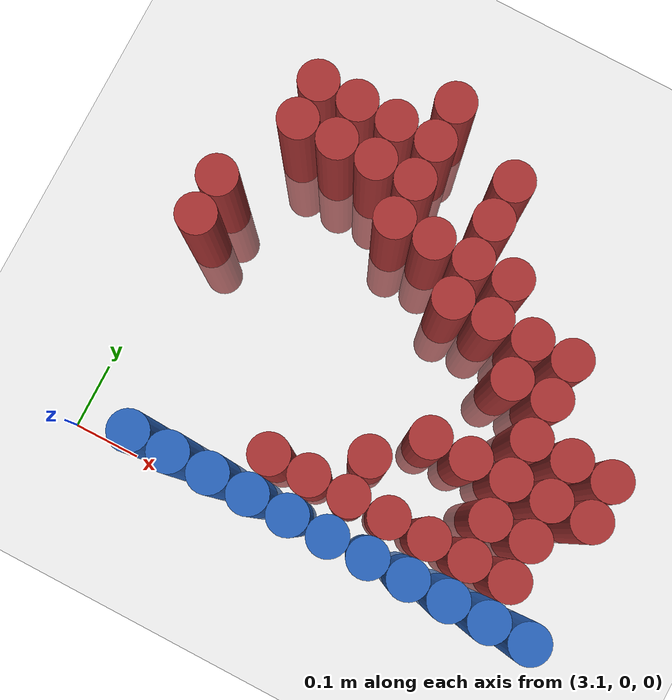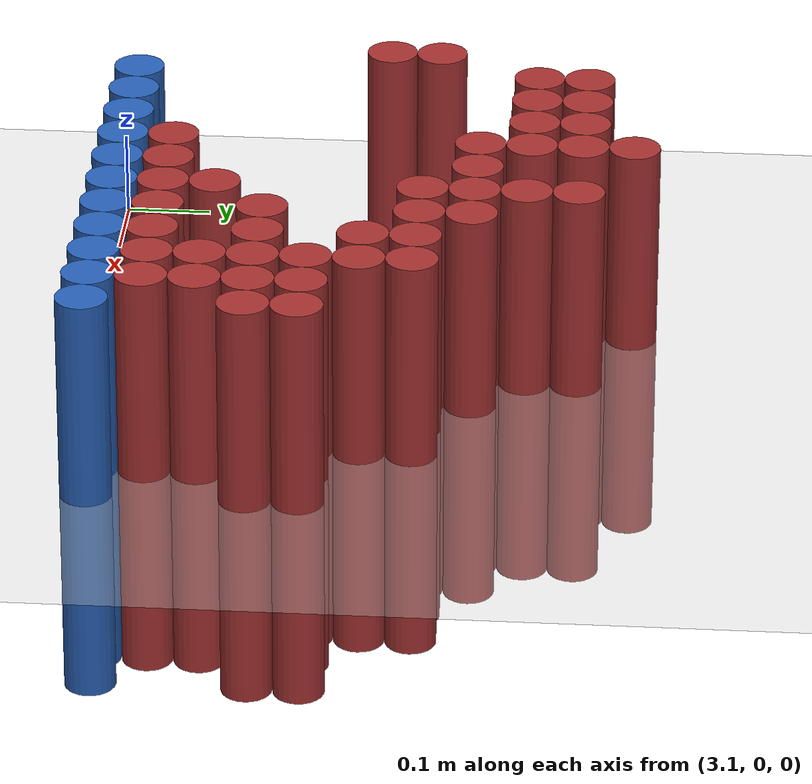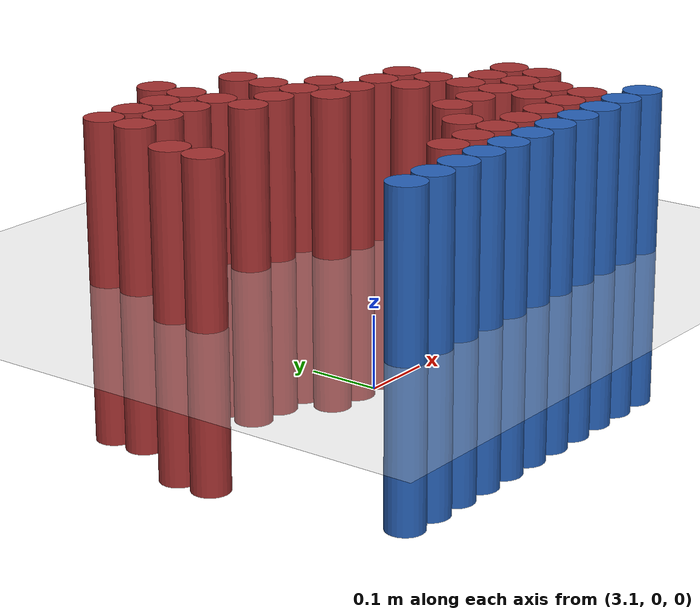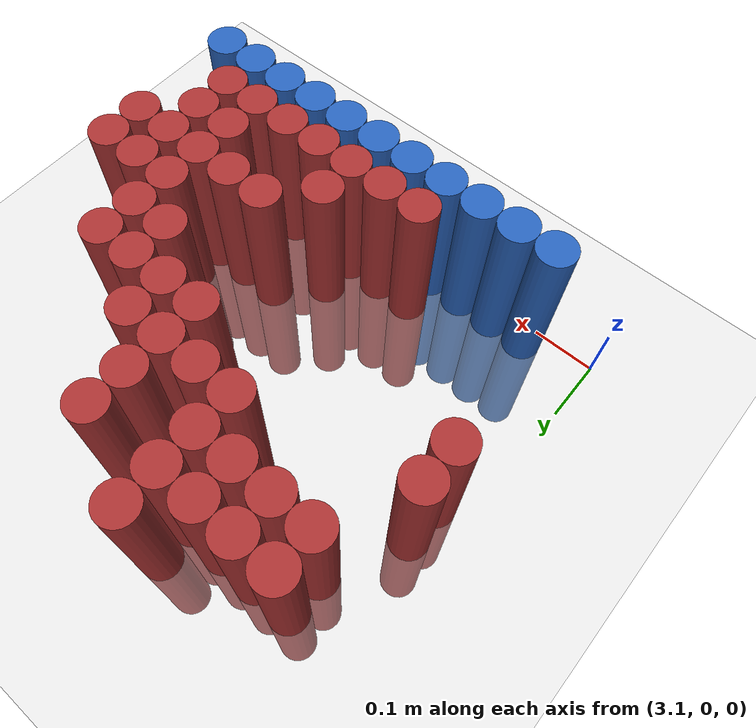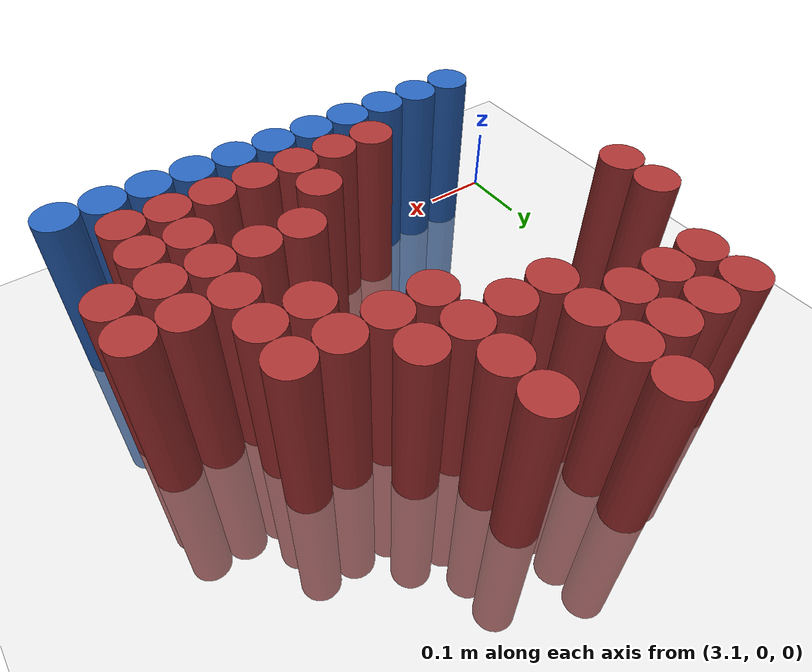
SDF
<sdf version="1.6">
 <world name="default">
  <model name="ground_plane">
   <static>1</static>
   <link name="link">
    <collision name="collision">
     <geometry><plane><normal>0 0 1</normal><size>100 100</size></plane></geometry>
     <surface><friction><ode><mu>100</mu><mu2>50</mu2></ode></friction></surface>
    </collision>
    <visual name="visual">
     <cast_shadows>0</cast_shadows>
     <geometry><plane><normal>0 0 1</normal><size>100 100</size></plane></geometry>
     <material>
      <script><uri>file://media/materials/scripts/gazebo.material</uri><name>Gazebo/Grey</name></script>
     </material>
    </visual>
   </link>
  </model>
  <model name="unit_cylinder_232">
   <static>1</static>
   <pose>3.390000 0.630000 0.000000 0.000000 0.000000 0.000000</pose>
   <link name="link">
    <inertial>
     <mass>1</mass>
     <inertia><ixx>0.145833</ixx><ixy>0</ixy><ixz>0</ixz><iyy>0.145833</iyy><iyz>0</iyz><izz>0.125</izz></inertia>
    </inertial>
    <collision name="collision">
     <geometry><cylinder><radius>0.030000</radius><length>0.5</length></cylinder></geometry>
    </collision>
    <visual name="visual">
     <geometry><cylinder><radius>0.030000</radius><length>0.5</length></cylinder></geometry>
     <material>
      <ambient>0.648000 0.192000 0.192000 1</ambient>
      <diffuse>0.648000 0.192000 0.192000 1</diffuse>
     </material>
     <material>
      <script><name>Gazebo/Grey</name><uri>file://media/materials/scripts/gazebo.material</uri></script>
     </material>
    </visual>
   </link>
  </model>
  <model name="unit_cylinder_244">
   <static>1</static>
   <pose>3.210000 0.570000 0.000000 0.000000 0.000000 0.000000</pose>
   <link name="link">
    <inertial>
     <mass>1</mass>
     <inertia><ixx>0.145833</ixx><ixy>0</ixy><ixz>0</ixz><iyy>0.145833</iyy><iyz>0</iyz><izz>0.125</izz></inertia>
    </inertial>
    <collision name="collision">
     <geometry><cylinder><radius>0.030000</radius><length>0.5</length></cylinder></geometry>
    </collision>
    <visual name="visual">
     <geometry><cylinder><radius>0.030000</radius><length>0.5</length></cylinder></geometry>
     <material>
      <ambient>0.648000 0.192000 0.192000 1</ambient>
      <diffuse>0.648000 0.192000 0.192000 1</diffuse>
     </material>
     <material>
      <script><name>Gazebo/Grey</name><uri>file://media/materials/scripts/gazebo.material</uri></script>
     </material>
    </visual>
   </link>
  </model>
  <model name="unit_cylinder_245">
   <static>1</static>
   <pose>3.270000 0.570000 0.000000 0.000000 0.000000 0.000000</pose>
   <link name="link">
    <inertial>
     <mass>1</mass>
     <inertia><ixx>0.145833</ixx><ixy>0</ixy><ixz>0</ixz><iyy>0.145833</iyy><iyz>0</iyz><izz>0.125</izz></inertia>
    </inertial>
    <collision name="collision">
     <geometry><cylinder><radius>0.030000</radius><length>0.5</length></cylinder></geometry>
    </collision>
    <visual name="visual">
     <geometry><cylinder><radius>0.030000</radius><length>0.5</length></cylinder></geometry>
     <material>
      <ambient>0.648000 0.192000 0.192000 1</ambient>
      <diffuse>0.648000 0.192000 0.192000 1</diffuse>
     </material>
     <material>
      <script><name>Gazebo/Grey</name><uri>file://media/materials/scripts/gazebo.material</uri></script>
     </material>
    </visual>
   </link>
  </model>
  <model name="unit_cylinder_246">
   <static>1</static>
   <pose>3.330000 0.570000 0.000000 0.000000 0.000000 0.000000</pose>
   <link name="link">
    <inertial>
     <mass>1</mass>
     <inertia><ixx>0.145833</ixx><ixy>0</ixy><ixz>0</ixz><iyy>0.145833</iyy><iyz>0</iyz><izz>0.125</izz></inertia>
    </inertial>
    <collision name="collision">
     <geometry><cylinder><radius>0.030000</radius><length>0.5</length></cylinder></geometry>
    </collision>
    <visual name="visual">
     <geometry><cylinder><radius>0.030000</radius><length>0.5</length></cylinder></geometry>
     <material>
      <ambient>0.648000 0.192000 0.192000 1</ambient>
      <diffuse>0.648000 0.192000 0.192000 1</diffuse>
     </material>
     <material>
      <script><name>Gazebo/Grey</name><uri>file://media/materials/scripts/gazebo.material</uri></script>
     </material>
    </visual>
   </link>
  </model>
  <model name="unit_cylinder_247">
   <static>1</static>
   <pose>3.390000 0.570000 0.000000 0.000000 0.000000 0.000000</pose>
   <link name="link">
    <inertial>
     <mass>1</mass>
     <inertia><ixx>0.145833</ixx><ixy>0</ixy><ixz>0</ixz><iyy>0.145833</iyy><iyz>0</iyz><izz>0.125</izz></inertia>
    </inertial>
    <collision name="collision">
     <geometry><cylinder><radius>0.030000</radius><length>0.5</length></cylinder></geometry>
    </collision>
    <visual name="visual">
     <geometry><cylinder><radius>0.030000</radius><length>0.5</length></cylinder></geometry>
     <material>
      <ambient>0.648000 0.192000 0.192000 1</ambient>
      <diffuse>0.648000 0.192000 0.192000 1</diffuse>
     </material>
     <material>
      <script><name>Gazebo/Grey</name><uri>file://media/materials/scripts/gazebo.material</uri></script>
     </material>
    </visual>
   </link>
  </model>
  <model name="unit_cylinder_248">
   <static>1</static>
   <pose>3.510000 0.570000 0.000000 0.000000 0.000000 0.000000</pose>
   <link name="link">
    <inertial>
     <mass>1</mass>
     <inertia><ixx>0.145833</ixx><ixy>0</ixy><ixz>0</ixz><iyy>0.145833</iyy><iyz>0</iyz><izz>0.125</izz></inertia>
    </inertial>
    <collision name="collision">
     <geometry><cylinder><radius>0.030000</radius><length>0.5</length></cylinder></geometry>
    </collision>
    <visual name="visual">
     <geometry><cylinder><radius>0.030000</radius><length>0.5</length></cylinder></geometry>
     <material>
      <ambient>0.648000 0.192000 0.192000 1</ambient>
      <diffuse>0.648000 0.192000 0.192000 1</diffuse>
     </material>
     <material>
      <script><name>Gazebo/Grey</name><uri>file://media/materials/scripts/gazebo.material</uri></script>
     </material>
    </visual>
   </link>
  </model>
  <model name="unit_cylinder_256">
   <static>1</static>
   <pose>3.210000 0.510000 0.000000 0.000000 0.000000 0.000000</pose>
   <link name="link">
    <inertial>
     <mass>1</mass>
     <inertia><ixx>0.145833</ixx><ixy>0</ixy><ixz>0</ixz><iyy>0.145833</iyy><iyz>0</iyz><izz>0.125</izz></inertia>
    </inertial>
    <collision name="collision">
     <geometry><cylinder><radius>0.030000</radius><length>0.5</length></cylinder></geometry>
    </collision>
    <visual name="visual">
     <geometry><cylinder><radius>0.030000</radius><length>0.5</length></cylinder></geometry>
     <material>
      <ambient>0.648000 0.192000 0.192000 1</ambient>
      <diffuse>0.648000 0.192000 0.192000 1</diffuse>
     </material>
     <material>
      <script><name>Gazebo/Grey</name><uri>file://media/materials/scripts/gazebo.material</uri></script>
     </material>
    </visual>
   </link>
  </model>
  <model name="unit_cylinder_257">
   <static>1</static>
   <pose>3.270000 0.510000 0.000000 0.000000 0.000000 0.000000</pose>
   <link name="link">
    <inertial>
     <mass>1</mass>
     <inertia><ixx>0.145833</ixx><ixy>0</ixy><ixz>0</ixz><iyy>0.145833</iyy><iyz>0</iyz><izz>0.125</izz></inertia>
    </inertial>
    <collision name="collision">
     <geometry><cylinder><radius>0.030000</radius><length>0.5</length></cylinder></geometry>
    </collision>
    <visual name="visual">
     <geometry><cylinder><radius>0.030000</radius><length>0.5</length></cylinder></geometry>
     <material>
      <ambient>0.648000 0.192000 0.192000 1</ambient>
      <diffuse>0.648000 0.192000 0.192000 1</diffuse>
     </material>
     <material>
      <script><name>Gazebo/Grey</name><uri>file://media/materials/scripts/gazebo.material</uri></script>
     </material>
    </visual>
   </link>
  </model>
  <model name="unit_cylinder_258">
   <static>1</static>
   <pose>3.330000 0.510000 0.000000 0.000000 0.000000 0.000000</pose>
   <link name="link">
    <inertial>
     <mass>1</mass>
     <inertia><ixx>0.145833</ixx><ixy>0</ixy><ixz>0</ixz><iyy>0.145833</iyy><iyz>0</iyz><izz>0.125</izz></inertia>
    </inertial>
    <collision name="collision">
     <geometry><cylinder><radius>0.030000</radius><length>0.5</length></cylinder></geometry>
    </collision>
    <visual name="visual">
     <geometry><cylinder><radius>0.030000</radius><length>0.5</length></cylinder></geometry>
     <material>
      <ambient>0.648000 0.192000 0.192000 1</ambient>
      <diffuse>0.648000 0.192000 0.192000 1</diffuse>
     </material>
     <material>
      <script><name>Gazebo/Grey</name><uri>file://media/materials/scripts/gazebo.material</uri></script>
     </material>
    </visual>
   </link>
  </model>
  <model name="unit_cylinder_259">
   <static>1</static>
   <pose>3.390000 0.510000 0.000000 0.000000 0.000000 0.000000</pose>
   <link name="link">
    <inertial>
     <mass>1</mass>
     <inertia><ixx>0.145833</ixx><ixy>0</ixy><ixz>0</ixz><iyy>0.145833</iyy><iyz>0</iyz><izz>0.125</izz></inertia>
    </inertial>
    <collision name="collision">
     <geometry><cylinder><radius>0.030000</radius><length>0.5</length></cylinder></geometry>
    </collision>
    <visual name="visual">
     <geometry><cylinder><radius>0.030000</radius><length>0.5</length></cylinder></geometry>
     <material>
      <ambient>0.648000 0.192000 0.192000 1</ambient>
      <diffuse>0.648000 0.192000 0.192000 1</diffuse>
     </material>
     <material>
      <script><name>Gazebo/Grey</name><uri>file://media/materials/scripts/gazebo.material</uri></script>
     </material>
    </visual>
   </link>
  </model>
  <model name="unit_cylinder_260">
   <static>1</static>
   <pose>3.510000 0.510000 0.000000 0.000000 0.000000 0.000000</pose>
   <link name="link">
    <inertial>
     <mass>1</mass>
     <inertia><ixx>0.145833</ixx><ixy>0</ixy><ixz>0</ixz><iyy>0.145833</iyy><iyz>0</iyz><izz>0.125</izz></inertia>
    </inertial>
    <collision name="collision">
     <geometry><cylinder><radius>0.030000</radius><length>0.5</length></cylinder></geometry>
    </collision>
    <visual name="visual">
     <geometry><cylinder><radius>0.030000</radius><length>0.5</length></cylinder></geometry>
     <material>
      <ambient>0.648000 0.192000 0.192000 1</ambient>
      <diffuse>0.648000 0.192000 0.192000 1</diffuse>
     </material>
     <material>
      <script><name>Gazebo/Grey</name><uri>file://media/materials/scripts/gazebo.material</uri></script>
     </material>
    </visual>
   </link>
  </model>
  <model name="unit_cylinder_268">
   <static>1</static>
   <pose>3.390000 0.450000 0.000000 0.000000 0.000000 0.000000</pose>
   <link name="link">
    <inertial>
     <mass>1</mass>
     <inertia><ixx>0.145833</ixx><ixy>0</ixy><ixz>0</ixz><iyy>0.145833</iyy><iyz>0</iyz><izz>0.125</izz></inertia>
    </inertial>
    <collision name="collision">
     <geometry><cylinder><radius>0.030000</radius><length>0.5</length></cylinder></geometry>
    </collision>
    <visual name="visual">
     <geometry><cylinder><radius>0.030000</radius><length>0.5</length></cylinder></geometry>
     <material>
      <ambient>0.648000 0.192000 0.192000 1</ambient>
      <diffuse>0.648000 0.192000 0.192000 1</diffuse>
     </material>
     <material>
      <script><name>Gazebo/Grey</name><uri>file://media/materials/scripts/gazebo.material</uri></script>
     </material>
    </visual>
   </link>
  </model>
  <model name="unit_cylinder_269">
   <static>1</static>
   <pose>3.450000 0.450000 0.000000 0.000000 0.000000 0.000000</pose>
   <link name="link">
    <inertial>
     <mass>1</mass>
     <inertia><ixx>0.145833</ixx><ixy>0</ixy><ixz>0</ixz><iyy>0.145833</iyy><iyz>0</iyz><izz>0.125</izz></inertia>
    </inertial>
    <collision name="collision">
     <geometry><cylinder><radius>0.030000</radius><length>0.5</length></cylinder></geometry>
    </collision>
    <visual name="visual">
     <geometry><cylinder><radius>0.030000</radius><length>0.5</length></cylinder></geometry>
     <material>
      <ambient>0.648000 0.192000 0.192000 1</ambient>
      <diffuse>0.648000 0.192000 0.192000 1</diffuse>
     </material>
     <material>
      <script><name>Gazebo/Grey</name><uri>file://media/materials/scripts/gazebo.material</uri></script>
     </material>
    </visual>
   </link>
  </model>
  <model name="unit_cylinder_270">
   <static>1</static>
   <pose>3.510000 0.450000 0.000000 0.000000 0.000000 0.000000</pose>
   <link name="link">
    <inertial>
     <mass>1</mass>
     <inertia><ixx>0.145833</ixx><ixy>0</ixy><ixz>0</ixz><iyy>0.145833</iyy><iyz>0</iyz><izz>0.125</izz></inertia>
    </inertial>
    <collision name="collision">
     <geometry><cylinder><radius>0.030000</radius><length>0.5</length></cylinder></geometry>
    </collision>
    <visual name="visual">
     <geometry><cylinder><radius>0.030000</radius><length>0.5</length></cylinder></geometry>
     <material>
      <ambient>0.648000 0.192000 0.192000 1</ambient>
      <diffuse>0.648000 0.192000 0.192000 1</diffuse>
     </material>
     <material>
      <script><name>Gazebo/Grey</name><uri>file://media/materials/scripts/gazebo.material</uri></script>
     </material>
    </visual>
   </link>
  </model>
  <model name="unit_cylinder_271">
   <static>1</static>
   <pose>3.570000 0.450000 0.000000 0.000000 0.000000 0.000000</pose>
   <link name="link">
    <inertial>
     <mass>1</mass>
     <inertia><ixx>0.145833</ixx><ixy>0</ixy><ixz>0</ixz><iyy>0.145833</iyy><iyz>0</iyz><izz>0.125</izz></inertia>
    </inertial>
    <collision name="collision">
     <geometry><cylinder><radius>0.030000</radius><length>0.5</length></cylinder></geometry>
    </collision>
    <visual name="visual">
     <geometry><cylinder><radius>0.030000</radius><length>0.5</length></cylinder></geometry>
     <material>
      <ambient>0.648000 0.192000 0.192000 1</ambient>
      <diffuse>0.648000 0.192000 0.192000 1</diffuse>
     </material>
     <material>
      <script><name>Gazebo/Grey</name><uri>file://media/materials/scripts/gazebo.material</uri></script>
     </material>
    </visual>
   </link>
  </model>
  <model name="unit_cylinder_278">
   <static>1</static>
   <pose>3.150000 0.390000 0.000000 0.000000 0.000000 0.000000</pose>
   <link name="link">
    <inertial>
     <mass>1</mass>
     <inertia><ixx>0.145833</ixx><ixy>0</ixy><ixz>0</ixz><iyy>0.145833</iyy><iyz>0</iyz><izz>0.125</izz></inertia>
    </inertial>
    <collision name="collision">
     <geometry><cylinder><radius>0.030000</radius><length>0.5</length></cylinder></geometry>
    </collision>
    <visual name="visual">
     <geometry><cylinder><radius>0.030000</radius><length>0.5</length></cylinder></geometry>
     <material>
      <ambient>0.648000 0.192000 0.192000 1</ambient>
      <diffuse>0.648000 0.192000 0.192000 1</diffuse>
     </material>
     <material>
      <script><name>Gazebo/Grey</name><uri>file://media/materials/scripts/gazebo.material</uri></script>
     </material>
    </visual>
   </link>
  </model>
  <model name="unit_cylinder_279">
   <static>1</static>
   <pose>3.510000 0.390000 0.000000 0.000000 0.000000 0.000000</pose>
   <link name="link">
    <inertial>
     <mass>1</mass>
     <inertia><ixx>0.145833</ixx><ixy>0</ixy><ixz>0</ixz><iyy>0.145833</iyy><iyz>0</iyz><izz>0.125</izz></inertia>
    </inertial>
    <collision name="collision">
     <geometry><cylinder><radius>0.030000</radius><length>0.5</length></cylinder></geometry>
    </collision>
    <visual name="visual">
     <geometry><cylinder><radius>0.030000</radius><length>0.5</length></cylinder></geometry>
     <material>
      <ambient>0.648000 0.192000 0.192000 1</ambient>
      <diffuse>0.648000 0.192000 0.192000 1</diffuse>
     </material>
     <material>
      <script><name>Gazebo/Grey</name><uri>file://media/materials/scripts/gazebo.material</uri></script>
     </material>
    </visual>
   </link>
  </model>
  <model name="unit_cylinder_280">
   <static>1</static>
   <pose>3.570000 0.390000 0.000000 0.000000 0.000000 0.000000</pose>
   <link name="link">
    <inertial>
     <mass>1</mass>
     <inertia><ixx>0.145833</ixx><ixy>0</ixy><ixz>0</ixz><iyy>0.145833</iyy><iyz>0</iyz><izz>0.125</izz></inertia>
    </inertial>
    <collision name="collision">
     <geometry><cylinder><radius>0.030000</radius><length>0.5</length></cylinder></geometry>
    </collision>
    <visual name="visual">
     <geometry><cylinder><radius>0.030000</radius><length>0.5</length></cylinder></geometry>
     <material>
      <ambient>0.648000 0.192000 0.192000 1</ambient>
      <diffuse>0.648000 0.192000 0.192000 1</diffuse>
     </material>
     <material>
      <script><name>Gazebo/Grey</name><uri>file://media/materials/scripts/gazebo.material</uri></script>
     </material>
    </visual>
   </link>
  </model>
  <model name="unit_cylinder_281">
   <static>1</static>
   <pose>3.630000 0.390000 0.000000 0.000000 0.000000 0.000000</pose>
   <link name="link">
    <inertial>
     <mass>1</mass>
     <inertia><ixx>0.145833</ixx><ixy>0</ixy><ixz>0</ixz><iyy>0.145833</iyy><iyz>0</iyz><izz>0.125</izz></inertia>
    </inertial>
    <collision name="collision">
     <geometry><cylinder><radius>0.030000</radius><length>0.5</length></cylinder></geometry>
    </collision>
    <visual name="visual">
     <geometry><cylinder><radius>0.030000</radius><length>0.5</length></cylinder></geometry>
     <material>
      <ambient>0.648000 0.192000 0.192000 1</ambient>
      <diffuse>0.648000 0.192000 0.192000 1</diffuse>
     </material>
     <material>
      <script><name>Gazebo/Grey</name><uri>file://media/materials/scripts/gazebo.material</uri></script>
     </material>
    </visual>
   </link>
  </model>
  <model name="unit_cylinder_282">
   <static>1</static>
   <pose>3.690000 0.390000 0.000000 0.000000 0.000000 0.000000</pose>
   <link name="link">
    <inertial>
     <mass>1</mass>
     <inertia><ixx>0.145833</ixx><ixy>0</ixy><ixz>0</ixz><iyy>0.145833</iyy><iyz>0</iyz><izz>0.125</izz></inertia>
    </inertial>
    <collision name="collision">
     <geometry><cylinder><radius>0.030000</radius><length>0.5</length></cylinder></geometry>
    </collision>
    <visual name="visual">
     <geometry><cylinder><radius>0.030000</radius><length>0.5</length></cylinder></geometry>
     <material>
      <ambient>0.648000 0.192000 0.192000 1</ambient>
      <diffuse>0.648000 0.192000 0.192000 1</diffuse>
     </material>
     <material>
      <script><name>Gazebo/Grey</name><uri>file://media/materials/scripts/gazebo.material</uri></script>
     </material>
    </visual>
   </link>
  </model>
  <model name="unit_cylinder_288">
   <static>1</static>
   <pose>3.150000 0.330000 0.000000 0.000000 0.000000 0.000000</pose>
   <link name="link">
    <inertial>
     <mass>1</mass>
     <inertia><ixx>0.145833</ixx><ixy>0</ixy><ixz>0</ixz><iyy>0.145833</iyy><iyz>0</iyz><izz>0.125</izz></inertia>
    </inertial>
    <collision name="collision">
     <geometry><cylinder><radius>0.030000</radius><length>0.5</length></cylinder></geometry>
    </collision>
    <visual name="visual">
     <geometry><cylinder><radius>0.030000</radius><length>0.5</length></cylinder></geometry>
     <material>
      <ambient>0.648000 0.192000 0.192000 1</ambient>
      <diffuse>0.648000 0.192000 0.192000 1</diffuse>
     </material>
     <material>
      <script><name>Gazebo/Grey</name><uri>file://media/materials/scripts/gazebo.material</uri></script>
     </material>
    </visual>
   </link>
  </model>
  <model name="unit_cylinder_289">
   <static>1</static>
   <pose>3.630000 0.330000 0.000000 0.000000 0.000000 0.000000</pose>
   <link name="link">
    <inertial>
     <mass>1</mass>
     <inertia><ixx>0.145833</ixx><ixy>0</ixy><ixz>0</ixz><iyy>0.145833</iyy><iyz>0</iyz><izz>0.125</izz></inertia>
    </inertial>
    <collision name="collision">
     <geometry><cylinder><radius>0.030000</radius><length>0.5</length></cylinder></geometry>
    </collision>
    <visual name="visual">
     <geometry><cylinder><radius>0.030000</radius><length>0.5</length></cylinder></geometry>
     <material>
      <ambient>0.648000 0.192000 0.192000 1</ambient>
      <diffuse>0.648000 0.192000 0.192000 1</diffuse>
     </material>
     <material>
      <script><name>Gazebo/Grey</name><uri>file://media/materials/scripts/gazebo.material</uri></script>
     </material>
    </visual>
   </link>
  </model>
  <model name="unit_cylinder_290">
   <static>1</static>
   <pose>3.690000 0.330000 0.000000 0.000000 0.000000 0.000000</pose>
   <link name="link">
    <inertial>
     <mass>1</mass>
     <inertia><ixx>0.145833</ixx><ixy>0</ixy><ixz>0</ixz><iyy>0.145833</iyy><iyz>0</iyz><izz>0.125</izz></inertia>
    </inertial>
    <collision name="collision">
     <geometry><cylinder><radius>0.030000</radius><length>0.5</length></cylinder></geometry>
    </collision>
    <visual name="visual">
     <geometry><cylinder><radius>0.030000</radius><length>0.5</length></cylinder></geometry>
     <material>
      <ambient>0.648000 0.192000 0.192000 1</ambient>
      <diffuse>0.648000 0.192000 0.192000 1</diffuse>
     </material>
     <material>
      <script><name>Gazebo/Grey</name><uri>file://media/materials/scripts/gazebo.material</uri></script>
     </material>
    </visual>
   </link>
  </model>
  <model name="unit_cylinder_294">
   <static>1</static>
   <pose>3.690000 0.270000 0.000000 0.000000 0.000000 0.000000</pose>
   <link name="link">
    <inertial>
     <mass>1</mass>
     <inertia><ixx>0.145833</ixx><ixy>0</ixy><ixz>0</ixz><iyy>0.145833</iyy><iyz>0</iyz><izz>0.125</izz></inertia>
    </inertial>
    <collision name="collision">
     <geometry><cylinder><radius>0.030000</radius><length>0.5</length></cylinder></geometry>
    </collision>
    <visual name="visual">
     <geometry><cylinder><radius>0.030000</radius><length>0.5</length></cylinder></geometry>
     <material>
      <ambient>0.648000 0.192000 0.192000 1</ambient>
      <diffuse>0.648000 0.192000 0.192000 1</diffuse>
     </material>
     <material>
      <script><name>Gazebo/Grey</name><uri>file://media/materials/scripts/gazebo.material</uri></script>
     </material>
    </visual>
   </link>
  </model>
  <model name="unit_cylinder_295">
   <static>1</static>
   <pose>3.750000 0.270000 0.000000 0.000000 0.000000 0.000000</pose>
   <link name="link">
    <inertial>
     <mass>1</mass>
     <inertia><ixx>0.145833</ixx><ixy>0</ixy><ixz>0</ixz><iyy>0.145833</iyy><iyz>0</iyz><izz>0.125</izz></inertia>
    </inertial>
    <collision name="collision">
     <geometry><cylinder><radius>0.030000</radius><length>0.5</length></cylinder></geometry>
    </collision>
    <visual name="visual">
     <geometry><cylinder><radius>0.030000</radius><length>0.5</length></cylinder></geometry>
     <material>
      <ambient>0.648000 0.192000 0.192000 1</ambient>
      <diffuse>0.648000 0.192000 0.192000 1</diffuse>
     </material>
     <material>
      <script><name>Gazebo/Grey</name><uri>file://media/materials/scripts/gazebo.material</uri></script>
     </material>
    </visual>
   </link>
  </model>
  <model name="unit_cylinder_296">
   <static>1</static>
   <pose>3.810000 0.270000 0.000000 0.000000 0.000000 0.000000</pose>
   <link name="link">
    <inertial>
     <mass>1</mass>
     <inertia><ixx>0.145833</ixx><ixy>0</ixy><ixz>0</ixz><iyy>0.145833</iyy><iyz>0</iyz><izz>0.125</izz></inertia>
    </inertial>
    <collision name="collision">
     <geometry><cylinder><radius>0.030000</radius><length>0.5</length></cylinder></geometry>
    </collision>
    <visual name="visual">
     <geometry><cylinder><radius>0.030000</radius><length>0.5</length></cylinder></geometry>
     <material>
      <ambient>0.648000 0.192000 0.192000 1</ambient>
      <diffuse>0.648000 0.192000 0.192000 1</diffuse>
     </material>
     <material>
      <script><name>Gazebo/Grey</name><uri>file://media/materials/scripts/gazebo.material</uri></script>
     </material>
    </visual>
   </link>
  </model>
  <model name="unit_cylinder_303">
   <static>1</static>
   <pose>3.570000 0.210000 0.000000 0.000000 0.000000 0.000000</pose>
   <link name="link">
    <inertial>
     <mass>1</mass>
     <inertia><ixx>0.145833</ixx><ixy>0</ixy><ixz>0</ixz><iyy>0.145833</iyy><iyz>0</iyz><izz>0.125</izz></inertia>
    </inertial>
    <collision name="collision">
     <geometry><cylinder><radius>0.030000</radius><length>0.5</length></cylinder></geometry>
    </collision>
    <visual name="visual">
     <geometry><cylinder><radius>0.030000</radius><length>0.5</length></cylinder></geometry>
     <material>
      <ambient>0.648000 0.192000 0.192000 1</ambient>
      <diffuse>0.648000 0.192000 0.192000 1</diffuse>
     </material>
     <material>
      <script><name>Gazebo/Grey</name><uri>file://media/materials/scripts/gazebo.material</uri></script>
     </material>
    </visual>
   </link>
  </model>
  <model name="unit_cylinder_304">
   <static>1</static>
   <pose>3.630000 0.210000 0.000000 0.000000 0.000000 0.000000</pose>
   <link name="link">
    <inertial>
     <mass>1</mass>
     <inertia><ixx>0.145833</ixx><ixy>0</ixy><ixz>0</ixz><iyy>0.145833</iyy><iyz>0</iyz><izz>0.125</izz></inertia>
    </inertial>
    <collision name="collision">
     <geometry><cylinder><radius>0.030000</radius><length>0.5</length></cylinder></geometry>
    </collision>
    <visual name="visual">
     <geometry><cylinder><radius>0.030000</radius><length>0.5</length></cylinder></geometry>
     <material>
      <ambient>0.648000 0.192000 0.192000 1</ambient>
      <diffuse>0.648000 0.192000 0.192000 1</diffuse>
     </material>
     <material>
      <script><name>Gazebo/Grey</name><uri>file://media/materials/scripts/gazebo.material</uri></script>
     </material>
    </visual>
   </link>
  </model>
  <model name="unit_cylinder_305">
   <static>1</static>
   <pose>3.690000 0.210000 0.000000 0.000000 0.000000 0.000000</pose>
   <link name="link">
    <inertial>
     <mass>1</mass>
     <inertia><ixx>0.145833</ixx><ixy>0</ixy><ixz>0</ixz><iyy>0.145833</iyy><iyz>0</iyz><izz>0.125</izz></inertia>
    </inertial>
    <collision name="collision">
     <geometry><cylinder><radius>0.030000</radius><length>0.5</length></cylinder></geometry>
    </collision>
    <visual name="visual">
     <geometry><cylinder><radius>0.030000</radius><length>0.5</length></cylinder></geometry>
     <material>
      <ambient>0.648000 0.192000 0.192000 1</ambient>
      <diffuse>0.648000 0.192000 0.192000 1</diffuse>
     </material>
     <material>
      <script><name>Gazebo/Grey</name><uri>file://media/materials/scripts/gazebo.material</uri></script>
     </material>
    </visual>
   </link>
  </model>
  <model name="unit_cylinder_306">
   <static>1</static>
   <pose>3.750000 0.210000 0.000000 0.000000 0.000000 0.000000</pose>
   <link name="link">
    <inertial>
     <mass>1</mass>
     <inertia><ixx>0.145833</ixx><ixy>0</ixy><ixz>0</ixz><iyy>0.145833</iyy><iyz>0</iyz><izz>0.125</izz></inertia>
    </inertial>
    <collision name="collision">
     <geometry><cylinder><radius>0.030000</radius><length>0.5</length></cylinder></geometry>
    </collision>
    <visual name="visual">
     <geometry><cylinder><radius>0.030000</radius><length>0.5</length></cylinder></geometry>
     <material>
      <ambient>0.648000 0.192000 0.192000 1</ambient>
      <diffuse>0.648000 0.192000 0.192000 1</diffuse>
     </material>
     <material>
      <script><name>Gazebo/Grey</name><uri>file://media/materials/scripts/gazebo.material</uri></script>
     </material>
    </visual>
   </link>
  </model>
  <model name="unit_cylinder_307">
   <static>1</static>
   <pose>3.810000 0.210000 0.000000 0.000000 0.000000 0.000000</pose>
   <link name="link">
    <inertial>
     <mass>1</mass>
     <inertia><ixx>0.145833</ixx><ixy>0</ixy><ixz>0</ixz><iyy>0.145833</iyy><iyz>0</iyz><izz>0.125</izz></inertia>
    </inertial>
    <collision name="collision">
     <geometry><cylinder><radius>0.030000</radius><length>0.5</length></cylinder></geometry>
    </collision>
    <visual name="visual">
     <geometry><cylinder><radius>0.030000</radius><length>0.5</length></cylinder></geometry>
     <material>
      <ambient>0.648000 0.192000 0.192000 1</ambient>
      <diffuse>0.648000 0.192000 0.192000 1</diffuse>
     </material>
     <material>
      <script><name>Gazebo/Grey</name><uri>file://media/materials/scripts/gazebo.material</uri></script>
     </material>
    </visual>
   </link>
  </model>
  <model name="unit_cylinder_315">
   <static>1</static>
   <pose>3.510000 0.150000 0.000000 0.000000 0.000000 0.000000</pose>
   <link name="link">
    <inertial>
     <mass>1</mass>
     <inertia><ixx>0.145833</ixx><ixy>0</ixy><ixz>0</ixz><iyy>0.145833</iyy><iyz>0</iyz><izz>0.125</izz></inertia>
    </inertial>
    <collision name="collision">
     <geometry><cylinder><radius>0.030000</radius><length>0.5</length></cylinder></geometry>
    </collision>
    <visual name="visual">
     <geometry><cylinder><radius>0.030000</radius><length>0.5</length></cylinder></geometry>
     <material>
      <ambient>0.648000 0.192000 0.192000 1</ambient>
      <diffuse>0.648000 0.192000 0.192000 1</diffuse>
     </material>
     <material>
      <script><name>Gazebo/Grey</name><uri>file://media/materials/scripts/gazebo.material</uri></script>
     </material>
    </visual>
   </link>
  </model>
  <model name="unit_cylinder_316">
   <static>1</static>
   <pose>3.690000 0.150000 0.000000 0.000000 0.000000 0.000000</pose>
   <link name="link">
    <inertial>
     <mass>1</mass>
     <inertia><ixx>0.145833</ixx><ixy>0</ixy><ixz>0</ixz><iyy>0.145833</iyy><iyz>0</iyz><izz>0.125</izz></inertia>
    </inertial>
    <collision name="collision">
     <geometry><cylinder><radius>0.030000</radius><length>0.5</length></cylinder></geometry>
    </collision>
    <visual name="visual">
     <geometry><cylinder><radius>0.030000</radius><length>0.5</length></cylinder></geometry>
     <material>
      <ambient>0.648000 0.192000 0.192000 1</ambient>
      <diffuse>0.648000 0.192000 0.192000 1</diffuse>
     </material>
     <material>
      <script><name>Gazebo/Grey</name><uri>file://media/materials/scripts/gazebo.material</uri></script>
     </material>
    </visual>
   </link>
  </model>
  <model name="unit_cylinder_317">
   <static>1</static>
   <pose>3.750000 0.150000 0.000000 0.000000 0.000000 0.000000</pose>
   <link name="link">
    <inertial>
     <mass>1</mass>
     <inertia><ixx>0.145833</ixx><ixy>0</ixy><ixz>0</ixz><iyy>0.145833</iyy><iyz>0</iyz><izz>0.125</izz></inertia>
    </inertial>
    <collision name="collision">
     <geometry><cylinder><radius>0.030000</radius><length>0.5</length></cylinder></geometry>
    </collision>
    <visual name="visual">
     <geometry><cylinder><radius>0.030000</radius><length>0.5</length></cylinder></geometry>
     <material>
      <ambient>0.648000 0.192000 0.192000 1</ambient>
      <diffuse>0.648000 0.192000 0.192000 1</diffuse>
     </material>
     <material>
      <script><name>Gazebo/Grey</name><uri>file://media/materials/scripts/gazebo.material</uri></script>
     </material>
    </visual>
   </link>
  </model>
  <model name="unit_cylinder_326">
   <static>1</static>
   <pose>3.390000 0.090000 0.000000 0.000000 0.000000 0.000000</pose>
   <link name="link">
    <inertial>
     <mass>1</mass>
     <inertia><ixx>0.145833</ixx><ixy>0</ixy><ixz>0</ixz><iyy>0.145833</iyy><iyz>0</iyz><izz>0.125</izz></inertia>
    </inertial>
    <collision name="collision">
     <geometry><cylinder><radius>0.030000</radius><length>0.5</length></cylinder></geometry>
    </collision>
    <visual name="visual">
     <geometry><cylinder><radius>0.030000</radius><length>0.5</length></cylinder></geometry>
     <material>
      <ambient>0.648000 0.192000 0.192000 1</ambient>
      <diffuse>0.648000 0.192000 0.192000 1</diffuse>
     </material>
     <material>
      <script><name>Gazebo/Grey</name><uri>file://media/materials/scripts/gazebo.material</uri></script>
     </material>
    </visual>
   </link>
  </model>
  <model name="unit_cylinder_327">
   <static>1</static>
   <pose>3.450000 0.090000 0.000000 0.000000 0.000000 0.000000</pose>
   <link name="link">
    <inertial>
     <mass>1</mass>
     <inertia><ixx>0.145833</ixx><ixy>0</ixy><ixz>0</ixz><iyy>0.145833</iyy><iyz>0</iyz><izz>0.125</izz></inertia>
    </inertial>
    <collision name="collision">
     <geometry><cylinder><radius>0.030000</radius><length>0.5</length></cylinder></geometry>
    </collision>
    <visual name="visual">
     <geometry><cylinder><radius>0.030000</radius><length>0.5</length></cylinder></geometry>
     <material>
      <ambient>0.648000 0.192000 0.192000 1</ambient>
      <diffuse>0.648000 0.192000 0.192000 1</diffuse>
     </material>
     <material>
      <script><name>Gazebo/Grey</name><uri>file://media/materials/scripts/gazebo.material</uri></script>
     </material>
    </visual>
   </link>
  </model>
  <model name="unit_cylinder_328">
   <static>1</static>
   <pose>3.510000 0.090000 0.000000 0.000000 0.000000 0.000000</pose>
   <link name="link">
    <inertial>
     <mass>1</mass>
     <inertia><ixx>0.145833</ixx><ixy>0</ixy><ixz>0</ixz><iyy>0.145833</iyy><iyz>0</iyz><izz>0.125</izz></inertia>
    </inertial>
    <collision name="collision">
     <geometry><cylinder><radius>0.030000</radius><length>0.5</length></cylinder></geometry>
    </collision>
    <visual name="visual">
     <geometry><cylinder><radius>0.030000</radius><length>0.5</length></cylinder></geometry>
     <material>
      <ambient>0.648000 0.192000 0.192000 1</ambient>
      <diffuse>0.648000 0.192000 0.192000 1</diffuse>
     </material>
     <material>
      <script><name>Gazebo/Grey</name><uri>file://media/materials/scripts/gazebo.material</uri></script>
     </material>
    </visual>
   </link>
  </model>
  <model name="unit_cylinder_329">
   <static>1</static>
   <pose>3.570000 0.090000 0.000000 0.000000 0.000000 0.000000</pose>
   <link name="link">
    <inertial>
     <mass>1</mass>
     <inertia><ixx>0.145833</ixx><ixy>0</ixy><ixz>0</ixz><iyy>0.145833</iyy><iyz>0</iyz><izz>0.125</izz></inertia>
    </inertial>
    <collision name="collision">
     <geometry><cylinder><radius>0.030000</radius><length>0.5</length></cylinder></geometry>
    </collision>
    <visual name="visual">
     <geometry><cylinder><radius>0.030000</radius><length>0.5</length></cylinder></geometry>
     <material>
      <ambient>0.648000 0.192000 0.192000 1</ambient>
      <diffuse>0.648000 0.192000 0.192000 1</diffuse>
     </material>
     <material>
      <script><name>Gazebo/Grey</name><uri>file://media/materials/scripts/gazebo.material</uri></script>
     </material>
    </visual>
   </link>
  </model>
  <model name="unit_cylinder_330">
   <static>1</static>
   <pose>3.630000 0.090000 0.000000 0.000000 0.000000 0.000000</pose>
   <link name="link">
    <inertial>
     <mass>1</mass>
     <inertia><ixx>0.145833</ixx><ixy>0</ixy><ixz>0</ixz><iyy>0.145833</iyy><iyz>0</iyz><izz>0.125</izz></inertia>
    </inertial>
    <collision name="collision">
     <geometry><cylinder><radius>0.030000</radius><length>0.5</length></cylinder></geometry>
    </collision>
    <visual name="visual">
     <geometry><cylinder><radius>0.030000</radius><length>0.5</length></cylinder></geometry>
     <material>
      <ambient>0.648000 0.192000 0.192000 1</ambient>
      <diffuse>0.648000 0.192000 0.192000 1</diffuse>
     </material>
     <material>
      <script><name>Gazebo/Grey</name><uri>file://media/materials/scripts/gazebo.material</uri></script>
     </material>
    </visual>
   </link>
  </model>
  <model name="unit_cylinder_331">
   <static>1</static>
   <pose>3.690000 0.090000 0.000000 0.000000 0.000000 0.000000</pose>
   <link name="link">
    <inertial>
     <mass>1</mass>
     <inertia><ixx>0.145833</ixx><ixy>0</ixy><ixz>0</ixz><iyy>0.145833</iyy><iyz>0</iyz><izz>0.125</izz></inertia>
    </inertial>
    <collision name="collision">
     <geometry><cylinder><radius>0.030000</radius><length>0.5</length></cylinder></geometry>
    </collision>
    <visual name="visual">
     <geometry><cylinder><radius>0.030000</radius><length>0.5</length></cylinder></geometry>
     <material>
      <ambient>0.648000 0.192000 0.192000 1</ambient>
      <diffuse>0.648000 0.192000 0.192000 1</diffuse>
     </material>
     <material>
      <script><name>Gazebo/Grey</name><uri>file://media/materials/scripts/gazebo.material</uri></script>
     </material>
    </visual>
   </link>
  </model>
  <model name="unit_cylinder_332">
   <static>1</static>
   <pose>3.750000 0.090000 0.000000 0.000000 0.000000 0.000000</pose>
   <link name="link">
    <inertial>
     <mass>1</mass>
     <inertia><ixx>0.145833</ixx><ixy>0</ixy><ixz>0</ixz><iyy>0.145833</iyy><iyz>0</iyz><izz>0.125</izz></inertia>
    </inertial>
    <collision name="collision">
     <geometry><cylinder><radius>0.030000</radius><length>0.5</length></cylinder></geometry>
    </collision>
    <visual name="visual">
     <geometry><cylinder><radius>0.030000</radius><length>0.5</length></cylinder></geometry>
     <material>
      <ambient>0.648000 0.192000 0.192000 1</ambient>
      <diffuse>0.648000 0.192000 0.192000 1</diffuse>
     </material>
     <material>
      <script><name>Gazebo/Grey</name><uri>file://media/materials/scripts/gazebo.material</uri></script>
     </material>
    </visual>
   </link>
  </model>
  <model name="unit_cylinder_352">
   <static>1</static>
   <pose>3.210000 0.030000 0.000000 0.000000 0.000000 0.000000</pose>
   <link name="link">
    <inertial>
     <mass>1</mass>
     <inertia><ixx>0.145833</ixx><ixy>0</ixy><ixz>0</ixz><iyy>0.145833</iyy><iyz>0</iyz><izz>0.125</izz></inertia>
    </inertial>
    <collision name="collision">
     <geometry><cylinder><radius>0.030000</radius><length>0.5</length></cylinder></geometry>
    </collision>
    <visual name="visual">
     <geometry><cylinder><radius>0.030000</radius><length>0.5</length></cylinder></geometry>
     <material>
      <ambient>0.152000 0.379000 0.720000 1</ambient>
      <diffuse>0.152000 0.379000 0.720000 1</diffuse>
     </material>
     <material>
      <script><name>Gazebo/Grey</name><uri>file://media/materials/scripts/gazebo.material</uri></script>
     </material>
    </visual>
   </link>
  </model>
  <model name="unit_cylinder_353">
   <static>1</static>
   <pose>3.270000 0.030000 0.000000 0.000000 0.000000 0.000000</pose>
   <link name="link">
    <inertial>
     <mass>1</mass>
     <inertia><ixx>0.145833</ixx><ixy>0</ixy><ixz>0</ixz><iyy>0.145833</iyy><iyz>0</iyz><izz>0.125</izz></inertia>
    </inertial>
    <collision name="collision">
     <geometry><cylinder><radius>0.030000</radius><length>0.5</length></cylinder></geometry>
    </collision>
    <visual name="visual">
     <geometry><cylinder><radius>0.030000</radius><length>0.5</length></cylinder></geometry>
     <material>
      <ambient>0.152000 0.379000 0.720000 1</ambient>
      <diffuse>0.152000 0.379000 0.720000 1</diffuse>
     </material>
     <material>
      <script><name>Gazebo/Grey</name><uri>file://media/materials/scripts/gazebo.material</uri></script>
     </material>
    </visual>
   </link>
  </model>
  <model name="unit_cylinder_354">
   <static>1</static>
   <pose>3.330000 0.030000 0.000000 0.000000 0.000000 0.000000</pose>
   <link name="link">
    <inertial>
     <mass>1</mass>
     <inertia><ixx>0.145833</ixx><ixy>0</ixy><ixz>0</ixz><iyy>0.145833</iyy><iyz>0</iyz><izz>0.125</izz></inertia>
    </inertial>
    <collision name="collision">
     <geometry><cylinder><radius>0.030000</radius><length>0.5</length></cylinder></geometry>
    </collision>
    <visual name="visual">
     <geometry><cylinder><radius>0.030000</radius><length>0.5</length></cylinder></geometry>
     <material>
      <ambient>0.152000 0.379000 0.720000 1</ambient>
      <diffuse>0.152000 0.379000 0.720000 1</diffuse>
     </material>
     <material>
      <script><name>Gazebo/Grey</name><uri>file://media/materials/scripts/gazebo.material</uri></script>
     </material>
    </visual>
   </link>
  </model>
  <model name="unit_cylinder_355">
   <static>1</static>
   <pose>3.390000 0.030000 0.000000 0.000000 0.000000 0.000000</pose>
   <link name="link">
    <inertial>
     <mass>1</mass>
     <inertia><ixx>0.145833</ixx><ixy>0</ixy><ixz>0</ixz><iyy>0.145833</iyy><iyz>0</iyz><izz>0.125</izz></inertia>
    </inertial>
    <collision name="collision">
     <geometry><cylinder><radius>0.030000</radius><length>0.5</length></cylinder></geometry>
    </collision>
    <visual name="visual">
     <geometry><cylinder><radius>0.030000</radius><length>0.5</length></cylinder></geometry>
     <material>
      <ambient>0.152000 0.379000 0.720000 1</ambient>
      <diffuse>0.152000 0.379000 0.720000 1</diffuse>
     </material>
     <material>
      <script><name>Gazebo/Grey</name><uri>file://media/materials/scripts/gazebo.material</uri></script>
     </material>
    </visual>
   </link>
  </model>
  <model name="unit_cylinder_356">
   <static>1</static>
   <pose>3.450000 0.030000 0.000000 0.000000 0.000000 0.000000</pose>
   <link name="link">
    <inertial>
     <mass>1</mass>
     <inertia><ixx>0.145833</ixx><ixy>0</ixy><ixz>0</ixz><iyy>0.145833</iyy><iyz>0</iyz><izz>0.125</izz></inertia>
    </inertial>
    <collision name="collision">
     <geometry><cylinder><radius>0.030000</radius><length>0.5</length></cylinder></geometry>
    </collision>
    <visual name="visual">
     <geometry><cylinder><radius>0.030000</radius><length>0.5</length></cylinder></geometry>
     <material>
      <ambient>0.152000 0.379000 0.720000 1</ambient>
      <diffuse>0.152000 0.379000 0.720000 1</diffuse>
     </material>
     <material>
      <script><name>Gazebo/Grey</name><uri>file://media/materials/scripts/gazebo.material</uri></script>
     </material>
    </visual>
   </link>
  </model>
  <model name="unit_cylinder_357">
   <static>1</static>
   <pose>3.510000 0.030000 0.000000 0.000000 0.000000 0.000000</pose>
   <link name="link">
    <inertial>
     <mass>1</mass>
     <inertia><ixx>0.145833</ixx><ixy>0</ixy><ixz>0</ixz><iyy>0.145833</iyy><iyz>0</iyz><izz>0.125</izz></inertia>
    </inertial>
    <collision name="collision">
     <geometry><cylinder><radius>0.030000</radius><length>0.5</length></cylinder></geometry>
    </collision>
    <visual name="visual">
     <geometry><cylinder><radius>0.030000</radius><length>0.5</length></cylinder></geometry>
     <material>
      <ambient>0.152000 0.379000 0.720000 1</ambient>
      <diffuse>0.152000 0.379000 0.720000 1</diffuse>
     </material>
     <material>
      <script><name>Gazebo/Grey</name><uri>file://media/materials/scripts/gazebo.material</uri></script>
     </material>
    </visual>
   </link>
  </model>
  <model name="unit_cylinder_358">
   <static>1</static>
   <pose>3.570000 0.030000 0.000000 0.000000 0.000000 0.000000</pose>
   <link name="link">
    <inertial>
     <mass>1</mass>
     <inertia><ixx>0.145833</ixx><ixy>0</ixy><ixz>0</ixz><iyy>0.145833</iyy><iyz>0</iyz><izz>0.125</izz></inertia>
    </inertial>
    <collision name="collision">
     <geometry><cylinder><radius>0.030000</radius><length>0.5</length></cylinder></geometry>
    </collision>
    <visual name="visual">
     <geometry><cylinder><radius>0.030000</radius><length>0.5</length></cylinder></geometry>
     <material>
      <ambient>0.152000 0.379000 0.720000 1</ambient>
      <diffuse>0.152000 0.379000 0.720000 1</diffuse>
     </material>
     <material>
      <script><name>Gazebo/Grey</name><uri>file://media/materials/scripts/gazebo.material</uri></script>
     </material>
    </visual>
   </link>
  </model>
  <model name="unit_cylinder_359">
   <static>1</static>
   <pose>3.630000 0.030000 0.000000 0.000000 0.000000 0.000000</pose>
   <link name="link">
    <inertial>
     <mass>1</mass>
     <inertia><ixx>0.145833</ixx><ixy>0</ixy><ixz>0</ixz><iyy>0.145833</iyy><iyz>0</iyz><izz>0.125</izz></inertia>
    </inertial>
    <collision name="collision">
     <geometry><cylinder><radius>0.030000</radius><length>0.5</length></cylinder></geometry>
    </collision>
    <visual name="visual">
     <geometry><cylinder><radius>0.030000</radius><length>0.5</length></cylinder></geometry>
     <material>
      <ambient>0.152000 0.379000 0.720000 1</ambient>
      <diffuse>0.152000 0.379000 0.720000 1</diffuse>
     </material>
     <material>
      <script><name>Gazebo/Grey</name><uri>file://media/materials/scripts/gazebo.material</uri></script>
     </material>
    </visual>
   </link>
  </model>
  <model name="unit_cylinder_360">
   <static>1</static>
   <pose>3.690000 0.030000 0.000000 0.000000 0.000000 0.000000</pose>
   <link name="link">
    <inertial>
     <mass>1</mass>
     <inertia><ixx>0.145833</ixx><ixy>0</ixy><ixz>0</ixz><iyy>0.145833</iyy><iyz>0</iyz><izz>0.125</izz></inertia>
    </inertial>
    <collision name="collision">
     <geometry><cylinder><radius>0.030000</radius><length>0.5</length></cylinder></geometry>
    </collision>
    <visual name="visual">
     <geometry><cylinder><radius>0.030000</radius><length>0.5</length></cylinder></geometry>
     <material>
      <ambient>0.152000 0.379000 0.720000 1</ambient>
      <diffuse>0.152000 0.379000 0.720000 1</diffuse>
     </material>
     <material>
      <script><name>Gazebo/Grey</name><uri>file://media/materials/scripts/gazebo.material</uri></script>
     </material>
    </visual>
   </link>
  </model>
  <model name="unit_cylinder_361">
   <static>1</static>
   <pose>3.750000 0.030000 0.000000 0.000000 0.000000 0.000000</pose>
   <link name="link">
    <inertial>
     <mass>1</mass>
     <inertia><ixx>0.145833</ixx><ixy>0</ixy><ixz>0</ixz><iyy>0.145833</iyy><iyz>0</iyz><izz>0.125</izz></inertia>
    </inertial>
    <collision name="collision">
     <geometry><cylinder><radius>0.030000</radius><length>0.5</length></cylinder></geometry>
    </collision>
    <visual name="visual">
     <geometry><cylinder><radius>0.030000</radius><length>0.5</length></cylinder></geometry>
     <material>
      <ambient>0.152000 0.379000 0.720000 1</ambient>
      <diffuse>0.152000 0.379000 0.720000 1</diffuse>
     </material>
     <material>
      <script><name>Gazebo/Grey</name><uri>file://media/materials/scripts/gazebo.material</uri></script>
     </material>
    </visual>
   </link>
  </model>
  <model name="unit_cylinder_362">
   <static>1</static>
   <pose>3.810000 0.030000 0.000000 0.000000 0.000000 0.000000</pose>
   <link name="link">
    <inertial>
     <mass>1</mass>
     <inertia><ixx>0.145833</ixx><ixy>0</ixy><ixz>0</ixz><iyy>0.145833</iyy><iyz>0</iyz><izz>0.125</izz></inertia>
    </inertial>
    <collision name="collision">
     <geometry><cylinder><radius>0.030000</radius><length>0.5</length></cylinder></geometry>
    </collision>
    <visual name="visual">
     <geometry><cylinder><radius>0.030000</radius><length>0.5</length></cylinder></geometry>
     <material>
      <ambient>0.152000 0.379000 0.720000 1</ambient>
      <diffuse>0.152000 0.379000 0.720000 1</diffuse>
     </material>
     <material>
      <script><name>Gazebo/Grey</name><uri>file://media/materials/scripts/gazebo.material</uri></script>
     </material>
    </visual>
   </link>
  </model>
 </world>
</sdf>
